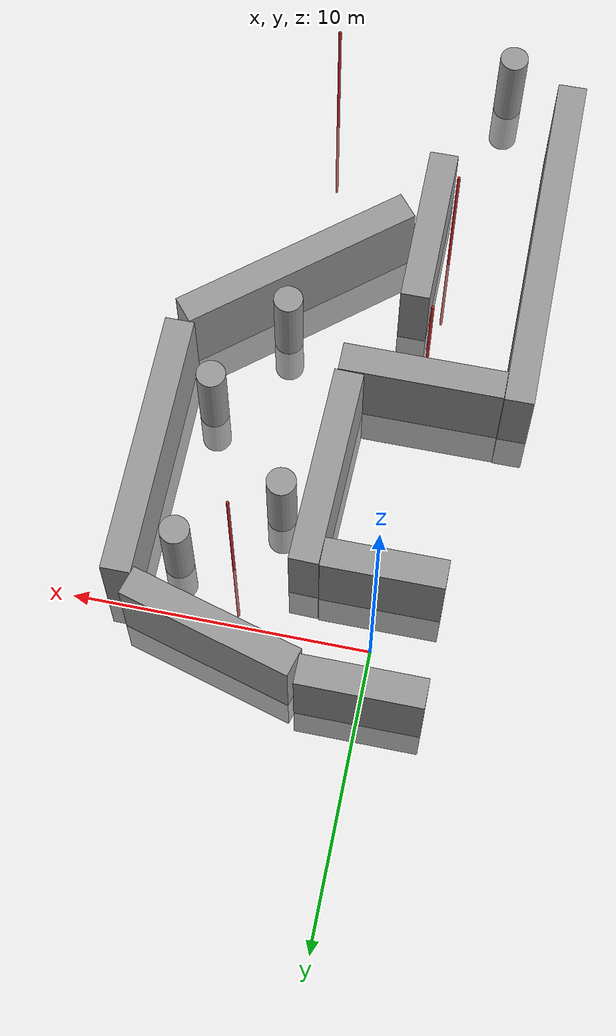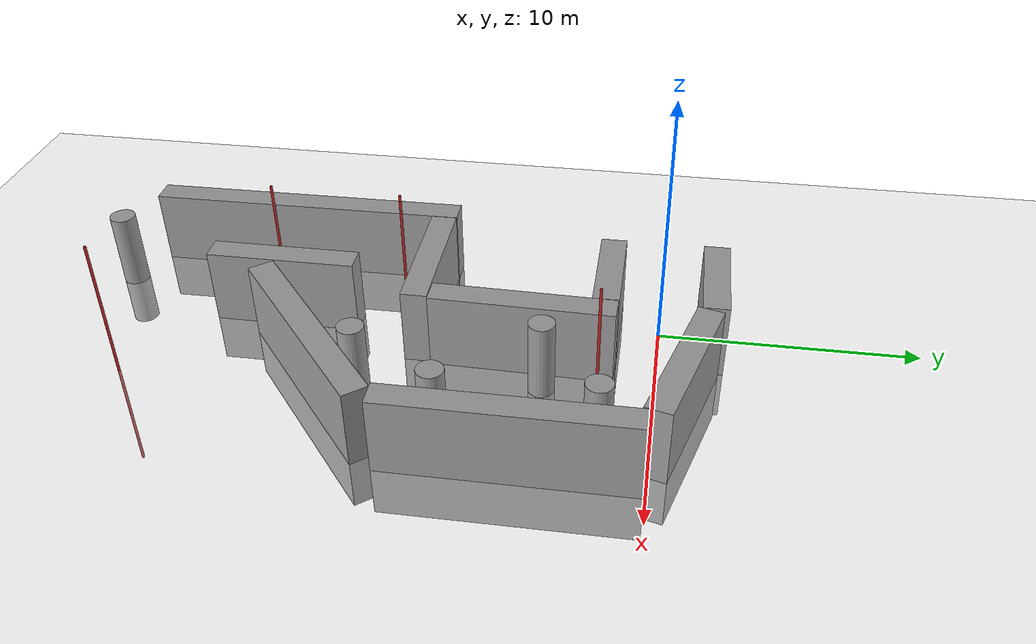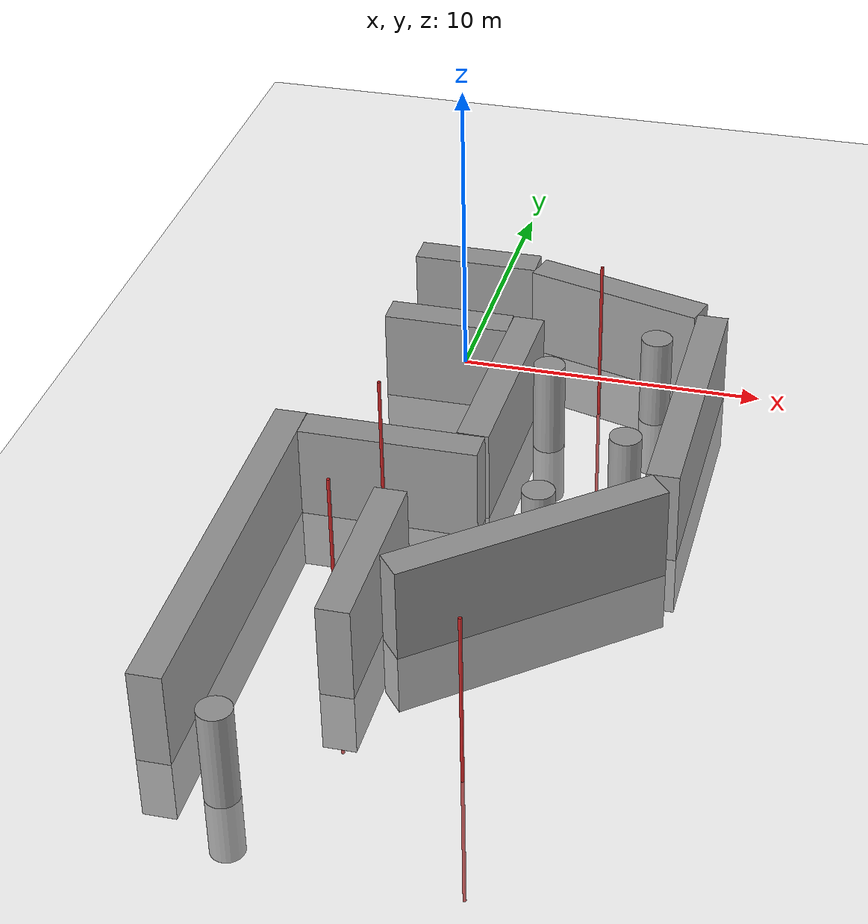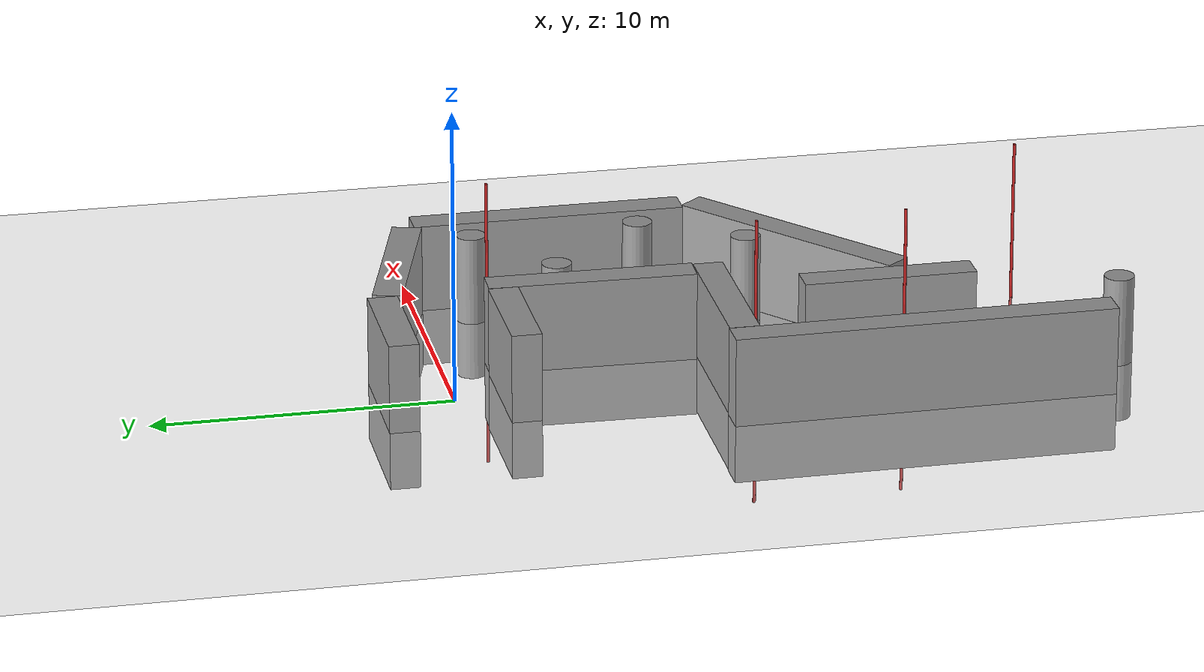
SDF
<sdf version="1.4">
 <world name="default">
  <light name="sun" type="directional">
   <pose>0 0 10 0 -0 0</pose>
   <diffuse>0.8 0.8 0.8 1</diffuse>
   <specular>0.2 0.2 0.2 1</specular>
   <attenuation>
    <range>1000</range>
    <constant>0.9</constant>
    <linear>0.01</linear>
    <quadratic>0.001</quadratic>
   </attenuation>
   <direction>-0.5 0.1 -0.9</direction>
  </light>
  <model name="ground_plane">
   <static>1</static>
   <link name="link">
    <collision name="collision">
     <geometry><plane><normal>0 0 1</normal><size>100 100</size></plane></geometry>
     <surface><friction><ode><mu>100</mu><mu2>50</mu2></ode></friction></surface>
    </collision>
    <visual name="visual">
     <cast_shadows>0</cast_shadows>
     <geometry><plane><normal>0 0 1</normal><size>100 100</size></plane></geometry>
     <material>
      <script><uri>file://media/materials/scripts/gazebo.material</uri><name>Gazebo/Grey</name></script>
     </material>
    </visual>
    <velocity_decay><linear>0</linear><angular>0</angular></velocity_decay>
   </link>
  </model>
  <physics type="ode">
   <max_step_size>0.01</max_step_size>
   <real_time_factor>1</real_time_factor>
   <real_time_update_rate>100</real_time_update_rate>
   <gravity>0 0 -9.8</gravity>
  </physics>
  <scene><ambient>0.4 0.4 0.4 1</ambient><background>0.7 0.7 0.7 1</background><shadows>1</shadows></scene>
  <spherical_coordinates>
   <surface_model>EARTH_WGS84</surface_model>
   <latitude_deg>0</latitude_deg>
   <longitude_deg>0</longitude_deg>
   <elevation>0</elevation>
   <heading_deg>0</heading_deg>
  </spherical_coordinates>
  <model name="unit_box_9">
   <pose>-0.021333 2.00451 0.499999 2e-06 4.1359e-25 -0.001421</pose>
   <link name="link">
    <inertial>
     <mass>1000</mass>
     <inertia><ixx>1000</ixx><ixy>0</ixy><ixz>0</ixz><iyy>1000</iyy><iyz>0</iyz><izz>1000</izz></inertia>
    </inertial>
    <collision name="collision"><geometry><box><size>4.13285 1 5</size></box></geometry></collision>
    <visual name="visual">
     <geometry><box><size>4.13285 1 5</size></box></geometry>
     <material>
      <script><uri>file://media/materials/scripts/gazebo.material</uri><name>Gazebo/Grey</name></script>
     </material>
    </visual>
    <velocity_decay><linear>0</linear><angular>0</angular></velocity_decay>
   </link>
   <static>1</static>
  </model>
  <model name="unit_box_10">
   <pose>-0.009127 -1.99689 0.5 0 -0 0.001534</pose>
   <link name="link">
    <inertial>
     <mass>1000</mass>
     <inertia><ixx>1000</ixx><ixy>0</ixy><ixz>0</ixz><iyy>1000</iyy><iyz>0</iyz><izz>1000</izz></inertia>
    </inertial>
    <collision name="collision"><geometry><box><size>4.06507 1 5</size></box></geometry></collision>
    <visual name="visual">
     <geometry><box><size>4.06507 1 5</size></box></geometry>
     <material>
      <script><uri>file://media/materials/scripts/gazebo.material</uri><name>Gazebo/Grey</name></script>
     </material>
    </visual>
    <velocity_decay><linear>0</linear><angular>0</angular></velocity_decay>
   </link>
   <static>1</static>
  </model>
  <model name="unit_box_12">
   <pose>5.01877 0.997856 0.499884 0 -3.9e-05 -0.278113</pose>
   <link name="link">
    <inertial>
     <mass>1000</mass>
     <inertia><ixx>1000</ixx><ixy>0</ixy><ixz>0</ixz><iyy>1000</iyy><iyz>0</iyz><izz>1000</izz></inertia>
    </inertial>
    <collision name="collision"><geometry><box><size>5.99679 1 5</size></box></geometry></collision>
    <visual name="visual">
     <geometry><box><size>6 1 5</size></box></geometry>
     <material>
      <script><uri>file://media/materials/scripts/gazebo.material</uri><name>Gazebo/Grey</name></script>
     </material>
    </visual>
    <velocity_decay><linear>0</linear><angular>0</angular></velocity_decay>
   </link>
   <static>1</static>
  </model>
  <model name="unit_box_13">
   <pose>2.47015 -5.00256 0.499995 1e-06 3.30872e-24 -0.021631</pose>
   <link name="link">
    <inertial>
     <mass>1000</mass>
     <inertia><ixx>1000</ixx><ixy>0</ixy><ixz>0</ixz><iyy>1000</iyy><iyz>0</iyz><izz>1000</izz></inertia>
    </inertial>
    <collision name="collision"><geometry><box><size>1 6.92925 5</size></box></geometry></collision>
    <visual name="visual">
     <geometry><box><size>1 6.92925 5</size></box></geometry>
     <material>
      <script><uri>file://media/materials/scripts/gazebo.material</uri><name>Gazebo/Grey</name></script>
     </material>
    </visual>
    <velocity_decay><linear>0</linear><angular>0</angular></velocity_decay>
   </link>
   <static>1</static>
  </model>
  <model name="unit_cylinder_1">
   <pose>6.88057 -7.48265 0.499992 0 -0 0</pose>
   <link name="link">
    <inertial>
     <mass>1000</mass>
     <inertia><ixx>1000</ixx><ixy>0</ixy><ixz>0</ixz><iyy>1000</iyy><iyz>0</iyz><izz>1000</izz></inertia>
    </inertial>
    <collision name="collision">
     <geometry><cylinder><radius>0.5</radius><length>5</length></cylinder></geometry>
    </collision>
    <visual name="visual">
     <geometry><cylinder><radius>0.5</radius><length>5</length></cylinder></geometry>
     <material>
      <script><uri>file://media/materials/scripts/gazebo.material</uri><name>Gazebo/Grey</name></script>
     </material>
    </visual>
    <velocity_decay><linear>0</linear><angular>0</angular></velocity_decay>
   </link>
   <static>1</static>
  </model>
  <model name="unit_cylinder_2">
   <pose>6.80463 -1.79631 0.499992 -0 -0 -0.00446</pose>
   <link name="link">
    <inertial>
     <mass>1000</mass>
     <inertia><ixx>1000</ixx><ixy>0</ixy><ixz>0</ixz><iyy>1000</iyy><iyz>0</iyz><izz>1000</izz></inertia>
    </inertial>
    <collision name="collision">
     <geometry><cylinder><radius>0.5</radius><length>5</length></cylinder></geometry>
    </collision>
    <visual name="visual">
     <geometry><cylinder><radius>0.5</radius><length>5</length></cylinder></geometry>
     <material>
      <script><uri>file://media/materials/scripts/gazebo.material</uri><name>Gazebo/Grey</name></script>
     </material>
    </visual>
    <velocity_decay><linear>0</linear><angular>0</angular></velocity_decay>
   </link>
   <static>1</static>
  </model>
  <model name="unit_cylinder_3">
   <pose>3.7958 -4.11999 0.499998 0 -0 0</pose>
   <link name="link">
    <inertial>
     <mass>1000</mass>
     <inertia><ixx>1000</ixx><ixy>0</ixy><ixz>0</ixz><iyy>1000</iyy><iyz>0</iyz><izz>1000</izz></inertia>
    </inertial>
    <collision name="collision">
     <geometry><cylinder><radius>0.5</radius><length>5</length></cylinder></geometry>
    </collision>
    <visual name="visual">
     <geometry><cylinder><radius>0.5</radius><length>5</length></cylinder></geometry>
     <material>
      <script><uri>file://media/materials/scripts/gazebo.material</uri><name>Gazebo/Grey</name></script>
     </material>
    </visual>
    <velocity_decay><linear>0</linear><angular>0</angular></velocity_decay>
   </link>
   <static>1</static>
  </model>
  <model name="unit_box_15">
   <pose>8.33687 -4.65903 0.499181 0.000178 -1e-06 0.00056</pose>
   <link name="link">
    <inertial>
     <mass>1000</mass>
     <inertia><ixx>1000</ixx><ixy>0</ixy><ixz>0</ixz><iyy>1000</iyy><iyz>0</iyz><izz>1000</izz></inertia>
    </inertial>
    <collision name="collision"><geometry><box><size>1 9.19347 5</size></box></geometry></collision>
    <visual name="visual">
     <geometry><box><size>1 9.19347 5</size></box></geometry>
     <material>
      <script><uri>file://media/materials/scripts/gazebo.material</uri><name>Gazebo/Grey</name></script>
     </material>
    </visual>
    <velocity_decay><linear>0</linear><angular>0</angular></velocity_decay>
   </link>
   <static>1</static>
  </model>
  <model name="unit_box_16">
   <pose>4.99446 -12.4241 0.499995 1e-06 -1e-06 -0.877438</pose>
   <link name="link">
    <inertial>
     <mass>1000</mass>
     <inertia><ixx>1000</ixx><ixy>0</ixy><ixz>0</ixz><iyy>1000</iyy><iyz>0</iyz><izz>1000</izz></inertia>
    </inertial>
    <collision name="collision"><geometry><box><size>1 8.70839 5</size></box></geometry></collision>
    <visual name="visual">
     <geometry><box><size>1 8.70839 5</size></box></geometry>
     <material>
      <script><uri>file://media/materials/scripts/gazebo.material</uri><name>Gazebo/Grey</name></script>
     </material>
    </visual>
    <velocity_decay><linear>0</linear><angular>0</angular></velocity_decay>
   </link>
   <static>1</static>
  </model>
  <model name="unit_cylinder_4">
   <pose>4.9393 -10.7662 0.499999 0 -0 0</pose>
   <link name="link">
    <inertial>
     <mass>1000</mass>
     <inertia><ixx>1000</ixx><ixy>0</ixy><ixz>0</ixz><iyy>1000</iyy><iyz>0</iyz><izz>1000</izz></inertia>
    </inertial>
    <collision name="collision">
     <geometry><cylinder><radius>0.5</radius><length>5</length></cylinder></geometry>
    </collision>
    <visual name="visual">
     <geometry><cylinder><radius>0.5</radius><length>5</length></cylinder></geometry>
     <material>
      <script><uri>file://media/materials/scripts/gazebo.material</uri><name>Gazebo/Grey</name></script>
     </material>
    </visual>
    <velocity_decay><linear>0</linear><angular>0</angular></velocity_decay>
   </link>
   <static>1</static>
  </model>
  <model name="unit_box_17">
   <pose>0.00077 -8.99952 0.5 -0 -0 -0.00051</pose>
   <link name="link">
    <inertial>
     <mass>1000</mass>
     <inertia><ixx>1000</ixx><ixy>0</ixy><ixz>0</ixz><iyy>1000</iyy><iyz>0</iyz><izz>1000</izz></inertia>
    </inertial>
    <collision name="collision"><geometry><box><size>5.57358 1 5</size></box></geometry></collision>
    <visual name="visual">
     <geometry><box><size>5.57358 1 5</size></box></geometry>
     <material>
      <script><uri>file://media/materials/scripts/gazebo.material</uri><name>Gazebo/Grey</name></script>
     </material>
    </visual>
    <velocity_decay><linear>0</linear><angular>0</angular></velocity_decay>
   </link>
   <static>1</static>
  </model>
  <model name="unit_box_18">
   <pose>0.766628 -14.6203 0.4999 -3.4e-05 0 0</pose>
   <link name="link">
    <inertial>
     <mass>1000</mass>
     <inertia><ixx>1000</ixx><ixy>0</ixy><ixz>0</ixz><iyy>1000</iyy><iyz>0</iyz><izz>1000</izz></inertia>
    </inertial>
    <collision name="collision"><geometry><box><size>1 5.78454 5</size></box></geometry></collision>
    <visual name="visual">
     <geometry><box><size>1 5.78454 5</size></box></geometry>
     <material>
      <script><uri>file://media/materials/scripts/gazebo.material</uri><name>Gazebo/Grey</name></script>
     </material>
    </visual>
    <velocity_decay><linear>0</linear><angular>0</angular></velocity_decay>
   </link>
   <static>1</static>
  </model>
  <model name="unit_box_19">
   <pose>-3.2615 -14.8481 0.496688 0.000521 -8e-06 0.006537</pose>
   <link name="link">
    <inertial>
     <mass>1000</mass>
     <inertia><ixx>1000</ixx><ixy>0</ixy><ixz>0</ixz><iyy>1000</iyy><iyz>0</iyz><izz>1000</izz></inertia>
    </inertial>
    <collision name="collision"><geometry><box><size>1 12.7418 5</size></box></geometry></collision>
    <visual name="visual">
     <geometry><box><size>1 12.7418 5</size></box></geometry>
     <material>
      <script><uri>file://media/materials/scripts/gazebo.material</uri><name>Gazebo/Grey</name></script>
     </material>
    </visual>
    <velocity_decay><linear>0</linear><angular>0</angular></velocity_decay>
   </link>
   <static>1</static>
  </model>
  <model name="unit_cylinder_5">
   <pose>-1 -22 0.5 0 -0 0</pose>
   <link name="link">
    <inertial>
     <mass>1000</mass>
     <inertia><ixx>1000</ixx><ixy>0</ixy><ixz>0</ixz><iyy>1000</iyy><iyz>0</iyz><izz>1000</izz></inertia>
    </inertial>
    <collision name="collision">
     <geometry><cylinder><radius>0.5</radius><length>5</length></cylinder></geometry>
    </collision>
    <visual name="visual">
     <geometry><cylinder><radius>0.5</radius><length>5</length></cylinder></geometry>
     <material>
      <script><uri>file://media/materials/scripts/gazebo.material</uri><name>Gazebo/Grey</name></script>
     </material>
    </visual>
    <velocity_decay><linear>0</linear><angular>0</angular></velocity_decay>
   </link>
   <static>1</static>
  </model>
  <model name="goal_0">
   <pose>5 -2 0.5 0 -0 0</pose>
   <link name="link">
    <inertial>
     <mass>1000</mass>
     <inertia><ixx>1000</ixx><ixy>0</ixy><ixz>0</ixz><iyy>1000</iyy><iyz>0</iyz><izz>1000</izz></inertia>
    </inertial>
    <collision name="collision">
     <geometry><cylinder><radius>0.5</radius><length>0.1</length></cylinder></geometry>
    </collision>
    <visual name="visual">
     <geometry><cylinder><radius>0.05</radius><length>10</length></cylinder></geometry>
     <material>
      <script><uri>file://media/materials/scripts/gazebo.material</uri><name>Gazebo/Red</name></script>
     </material>
    </visual>
    <velocity_decay><linear>0</linear><angular>0</angular></velocity_decay>
   </link>
   <static>1</static>
  </model>
  <model name="goal_1">
   <pose>0 -10 0.5 0 -0 0</pose>
   <link name="link">
    <inertial>
     <mass>1000</mass>
     <inertia><ixx>1000</ixx><ixy>0</ixy><ixz>0</ixz><iyy>1000</iyy><iyz>0</iyz><izz>1000</izz></inertia>
    </inertial>
    <collision name="collision">
     <geometry><cylinder><radius>0.5</radius><length>0.1</length></cylinder></geometry>
    </collision>
    <visual name="visual">
     <geometry><cylinder><radius>0.05</radius><length>10</length></cylinder></geometry>
     <material>
      <script><uri>file://media/materials/scripts/gazebo.material</uri><name>Gazebo/Red</name></script>
     </material>
    </visual>
    <velocity_decay><linear>0</linear><angular>0</angular></velocity_decay>
   </link>
   <static>1</static>
  </model>
  <model name="goal_2">
   <pose>0 -15 0.5 0 -0 0</pose>
   <link name="link">
    <inertial>
     <mass>1000</mass>
     <inertia><ixx>1000</ixx><ixy>0</ixy><ixz>0</ixz><iyy>1000</iyy><iyz>0</iyz><izz>1000</izz></inertia>
    </inertial>
    <collision name="collision">
     <geometry><cylinder><radius>0.5</radius><length>0.1</length></cylinder></geometry>
    </collision>
    <visual name="visual">
     <geometry><cylinder><radius>0.05</radius><length>10</length></cylinder></geometry>
     <material>
      <script><uri>file://media/materials/scripts/gazebo.material</uri><name>Gazebo/Red</name></script>
     </material>
    </visual>
    <velocity_decay><linear>0</linear><angular>0</angular></velocity_decay>
   </link>
   <static>1</static>
  </model>
  <model name="goal_2">
   <pose>5 -20 0.5 0 -0 0</pose>
   <link name="link">
    <inertial>
     <mass>1000</mass>
     <inertia><ixx>1000</ixx><ixy>0</ixy><ixz>0</ixz><iyy>1000</iyy><iyz>0</iyz><izz>1000</izz></inertia>
    </inertial>
    <collision name="collision">
     <geometry><cylinder><radius>0.5</radius><length>0.1</length></cylinder></geometry>
    </collision>
    <visual name="visual">
     <geometry><cylinder><radius>0.05</radius><length>10</length></cylinder></geometry>
     <material>
      <script><uri>file://media/materials/scripts/gazebo.material</uri><name>Gazebo/Red</name></script>
     </material>
    </visual>
    <velocity_decay><linear>0</linear><angular>0</angular></velocity_decay>
   </link>
   <static>1</static>
  </model>
 </world>
</sdf>
